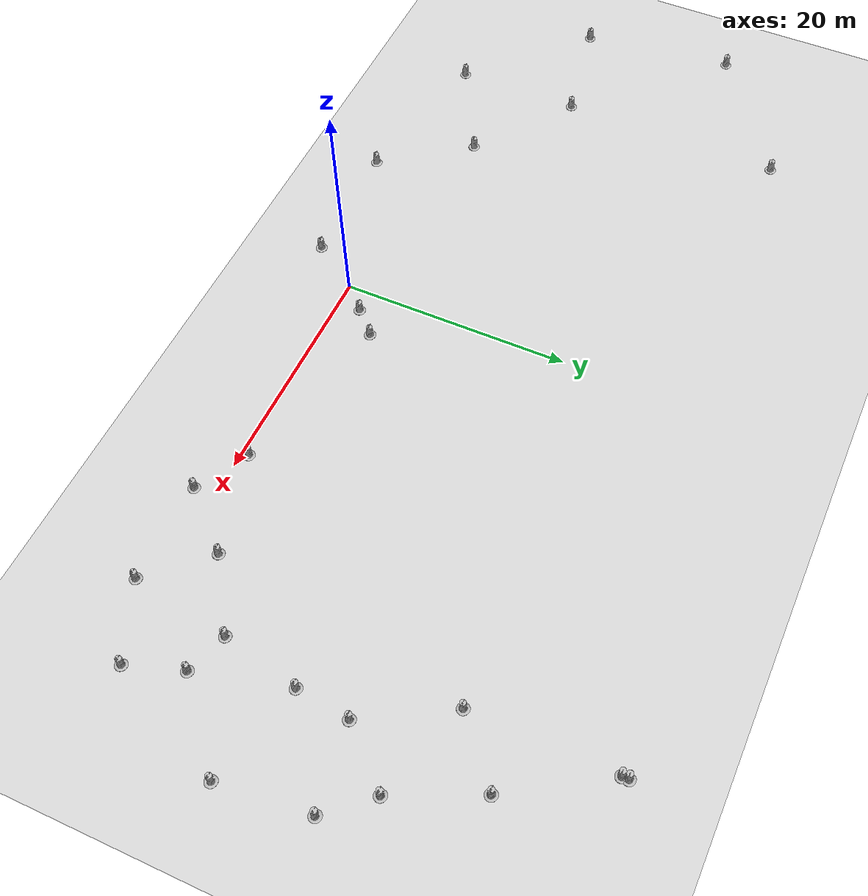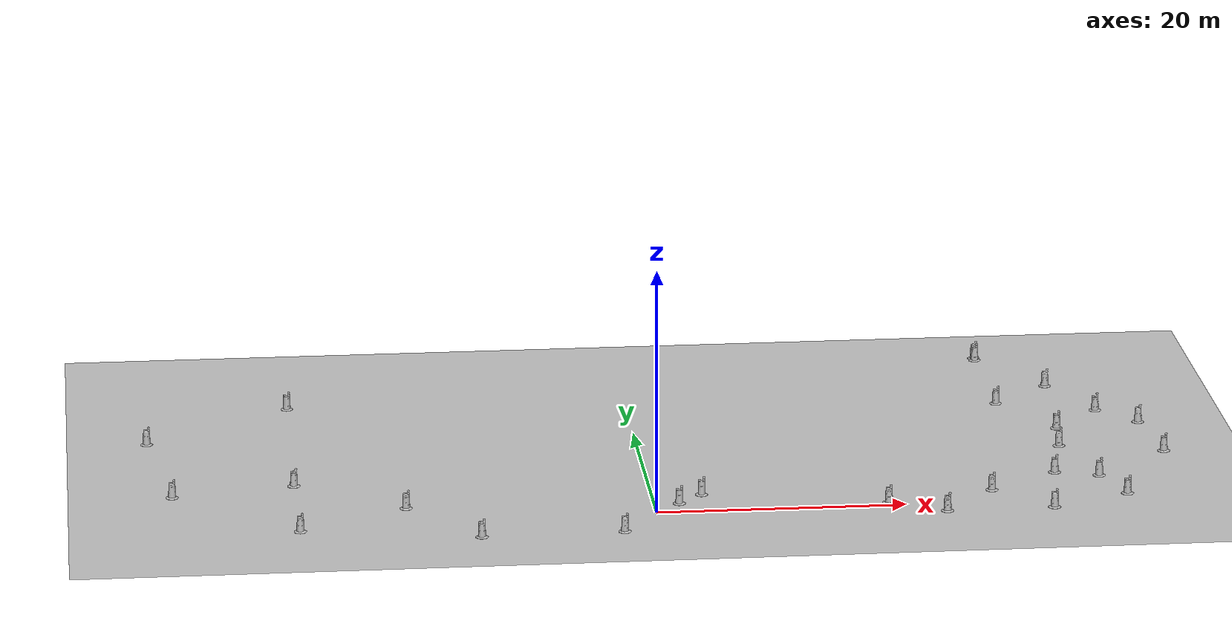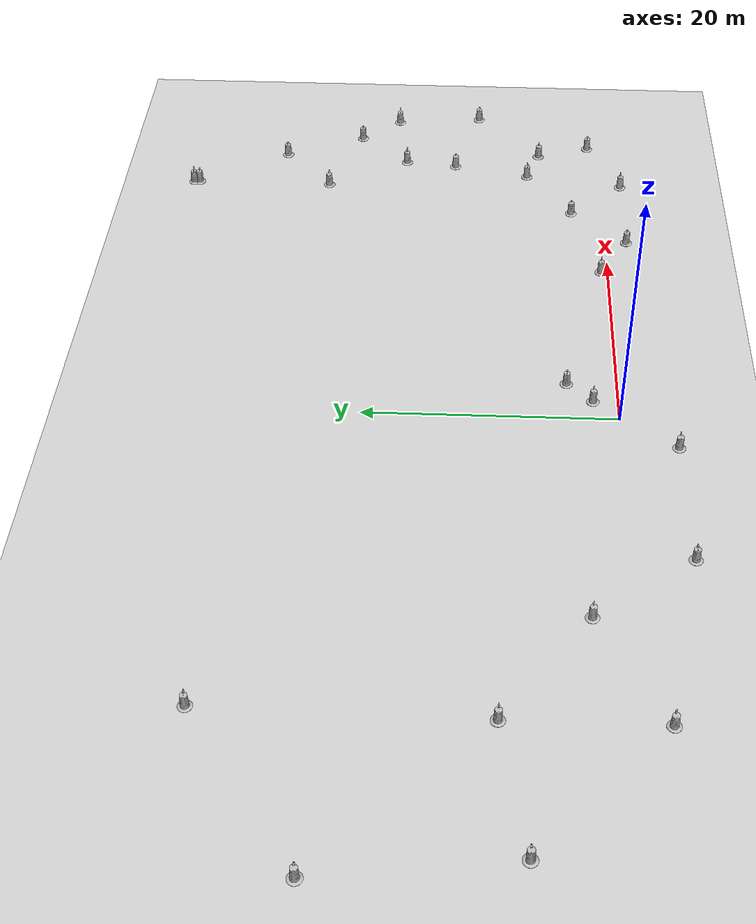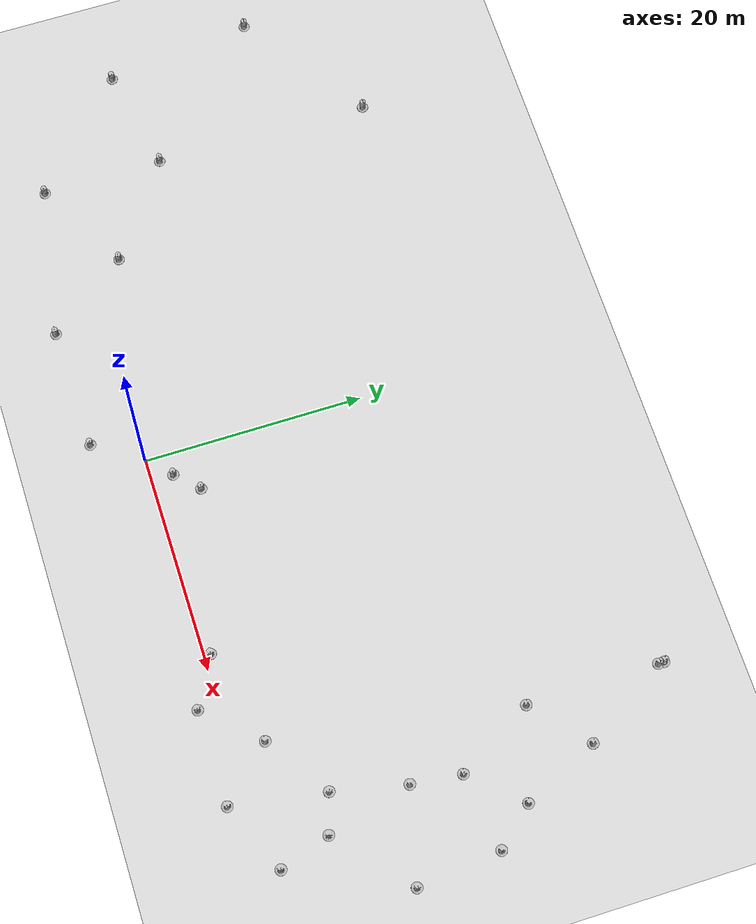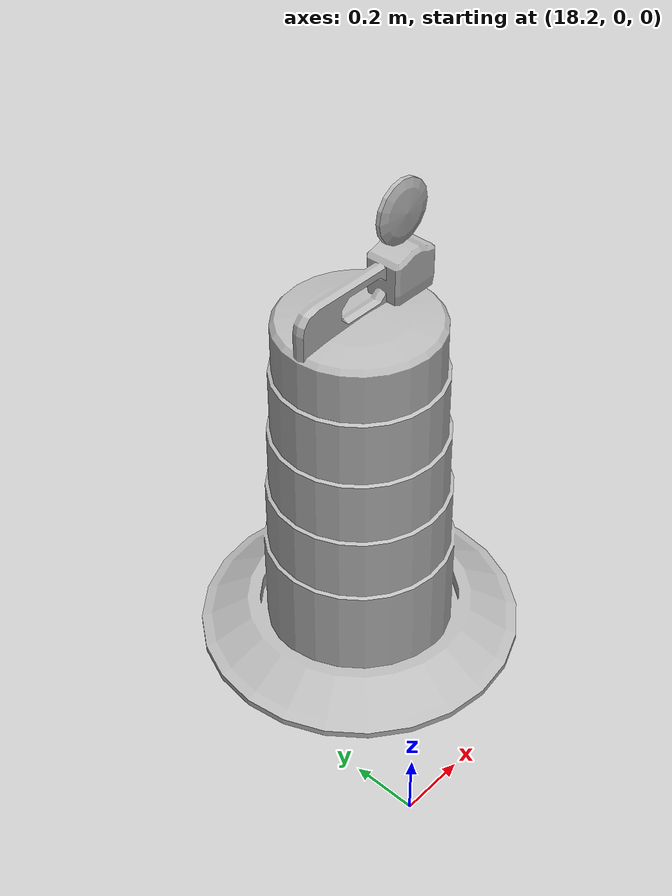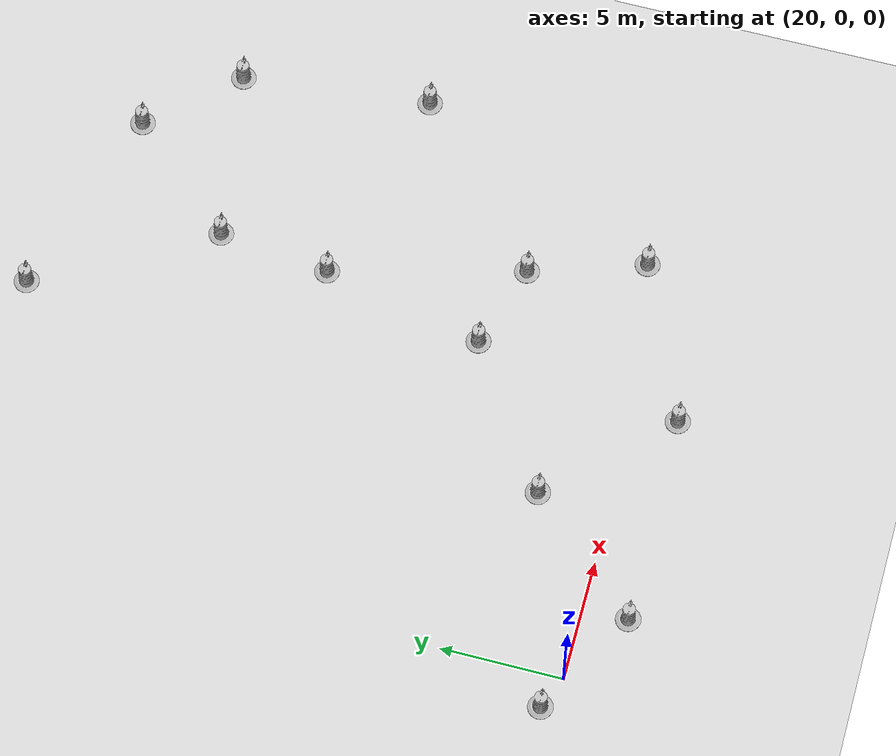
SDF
<?xml version="1.0" ?>
<sdf version="1.4">
  <world name="default">
    <scene>
      <sky>
        <clouds>
          <speed>12</speed>
        </clouds>
      </sky>
    <ambient>1.0 1.0 1.0 1.0</ambient>
    <shadows>true</shadows>
    </scene>

    <physics type="ode">
      <real_time_update_rate>100</real_time_update_rate>
      <max_step_size>0.001</max_step_size>
    </physics>
    <!-- A global light source -->
    <include>
      <uri>model:///urdf/models/sun</uri>
    </include>
    <!-- A ground plane -->
    <include>
      <uri>model:///urdf/models/grass_plane</uri>
    </include> -->
    <!-- barrels -->
    <include>
      <uri>model:///urdf/models/construction_barrel</uri>
      <name>construction_barrel_0</name> <!-- THE NAME MUST BE UNIQUE-->
      <pose>2 2 0 0 -0 0</pose>
    </include>
    <include>
      <uri>model:///urdf/models/construction_barrel</uri>
      <name>construction_barrel_1</name> <!-- THE NAME MUST BE UNIQUE-->
      <pose>4 4 0 0 -0 0</pose>
    </include>
    <include>
      <uri>model:///urdf/models/construction_barrel</uri>
      <name>construction_barrel_2</name> <!-- THE NAME MUST BE UNIQUE-->
      <pose>18.6657 0.614863 0 0 -0 0</pose>
    </include>
    <include>
      <uri>model:///urdf/models/construction_barrel</uri>
      <name>construction_barrel_3</name> <!-- THE NAME MUST BE UNIQUE-->
      <pose>23.0422 -1.81227 0 0 -0 0</pose>
    </include>
    <include>
      <uri>model:///urdf/models/construction_barrel</uri>
      <name>construction_barrel_4</name> <!-- THE NAME MUST BE UNIQUE-->
      <pose>27.3201 2.89872 0 0 -0 0</pose>
    </include>
    <include>
      <uri>model:///urdf/models/construction_barrel</uri>
      <name>construction_barrel_5</name> <!-- THE NAME MUST BE UNIQUE-->
      <pose>31.6636 -1.729 0 0 -0 0</pose>
    </include>
    <include>
      <uri>model:///urdf/models/construction_barrel</uri>
      <name>construction_barrel_6</name> <!-- THE NAME MUST BE UNIQUE-->
      <pose>38.0182 1.04564 0 0 -0 0</pose>
    </include>
    <include>
      <uri>model:///urdf/models/construction_barrel</uri>
      <name>construction_barrel_7</name> <!-- THE NAME MUST BE UNIQUE-->
      <pose>36.4965 5.66737 0 0 -0 0</pose>
    </include>
    <include>
      <uri>model:///urdf/models/construction_barrel</uri>
      <name>construction_barrel_8</name> <!-- THE NAME MUST BE UNIQUE-->
      <pose>33.0303 6.78622 0 0 -0 0</pose>
    </include>
    <include>
      <uri>model:///urdf/models/construction_barrel</uri>
      <name>construction_barrel_9</name> <!-- THE NAME MUST BE UNIQUE-->
      <pose>34.4685 13.4389 0 0 -0 0</pose>
    </include>
    <include>
      <uri>model:///urdf/models/construction_barrel</uri>
      <name>construction_barrel_10</name> <!-- THE NAME MUST BE UNIQUE-->
      <pose>42.799 11.3397 0 0 -0 0</pose>
    </include>
    <include>
      <uri>model:///urdf/models/construction_barrel</uri>
      <name>construction_barrel_11</name> <!-- THE NAME MUST BE UNIQUE-->
      <pose>42 19 0 0 -0 0</pose>
    </include>
    <include>
      <uri>model:///urdf/models/construction_barrel</uri>
      <name>construction_barrel_12</name> <!-- THE NAME MUST BE UNIQUE-->
      <pose>35 18 0 0 -0 0</pose>
    </include>
    <include>
      <uri>model:///urdf/models/construction_barrel</uri>
      <name>construction_barrel_13</name> <!-- THE NAME MUST BE UNIQUE-->
      <pose>35.8279 29.3106 0 0 -0 0</pose>
    </include>
    <include>
      <uri>model:///urdf/models/construction_barrel</uri>
      <name>construction_barrel_14</name> <!-- THE NAME MUST BE UNIQUE-->
      <pose>31 25 0 0 -0 0</pose>
    </include>
    <include>
      <uri>model:///urdf/models/construction_barrel</uri>
      <name>construction_barrel_15</name> <!-- THE NAME MUST BE UNIQUE-->
      <pose>38.9667 22.4208 0 0 -0 0</pose>
    </include>
    <include>
      <uri>model:///urdf/models/construction_barrel</uri>
      <name>construction_barrel_16</name> <!-- THE NAME MUST BE UNIQUE-->
      <pose>31 37 0 0 -0 0</pose>
    </include>
    <include>
      <uri>model:///urdf/models/construction_barrel</uri>
      <name>construction_barrel_17</name> <!-- THE NAME MUST BE UNIQUE-->
      <pose>-28.1764 29.2266 0 0 -0 0</pose>
    </include>
    <include>
      <uri>model:///urdf/models/construction_barrel</uri>
      <name>construction_barrel_18</name> <!-- THE NAME MUST BE UNIQUE-->
      <pose>30.9879 37.5247 0 0 -0 0</pose>
    </include>
    <include>
      <uri>model:///urdf/models/construction_barrel</uri>
      <name>construction_barrel_19</name> <!-- THE NAME MUST BE UNIQUE-->
      <pose>-40 21 0 0 -0 0</pose>
    </include>
    <include>
      <uri>model:///urdf/models/construction_barrel</uri>
      <name>construction_barrel_20</name> <!-- THE NAME MUST BE UNIQUE-->
      <pose>-28.4091 9.29088 0 0 -0 0</pose>
    </include>
    <include>
      <uri>model:///urdf/models/construction_barrel</uri>
      <name>construction_barrel_21</name> <!-- THE NAME MUST BE UNIQUE-->
      <pose>-38.2216 7.35362 0 0 -0 0</pose>
    </include>
    <include>
      <uri>model:///urdf/models/construction_barrel</uri>
      <name>construction_barrel_22</name> <!-- THE NAME MUST BE UNIQUE-->
      <pose>-28.3564 -1.82965 0 0 -0 0</pose>
    </include>
    <include>
      <uri>model:///urdf/models/construction_barrel</uri>
      <name>construction_barrel_23</name> <!-- THE NAME MUST BE UNIQUE-->
      <pose>-19.7443 2.95614 0 0 -0 0</pose>
    </include>
    <include>
      <uri>model:///urdf/models/construction_barrel</uri>
      <name>construction_barrel_24</name> <!-- THE NAME MUST BE UNIQUE-->
      <pose>-14.2283 -4.48718 0 0 -0 0</pose>
    </include>
    <include>
      <uri>model:///urdf/models/construction_barrel</uri>
      <name>construction_barrel_25</name> <!-- THE NAME MUST BE UNIQUE-->
      <pose>-2.93539 -4.28065 0 0 -0 0</pose>
    </include>
  </world>
</sdf>

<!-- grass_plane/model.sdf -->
<sdf version="1.5">
  <model name="grass_plane">
    <static>true</static>
    <link name="link">
      <collision name="collision">
        <geometry>
          <plane>
            <normal>0 0 1</normal>
            <size>100 100</size>
          </plane>
        </geometry>
        <surface>
          <friction>
            <ode>
              <mu>100</mu>
              <mu2>50</mu2>
            </ode>
          </friction>
        </surface>
      </collision>
      <visual name="visual">
        <cast_shadows>false</cast_shadows>
        <geometry>
          <plane>
            <normal>0 0 1</normal>
            <size>100 100</size>
          </plane>
        </geometry>
        <material>
          <script>
            <uri>model://urdf/qualification.material</uri>
            <!-- has tenitive potholes and lines -->
            <name>Gazebo/igvc_field</name>
          </script>
        </material>
      </visual>
    </link>
  </model>
</sdf>

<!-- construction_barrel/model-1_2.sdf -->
<sdf version="1.2">
  <model name='construction_barrel'>
    <link name='link'>
      <gravity>1</gravity>
      <inertial>
        <mass>500</mass>
        <inertia>
          <ixx>51.2096</ixx>
          <iyy>51.2096</iyy>
          <izz>25</izz>
          <ixy>0</ixy>
          <ixz>0</ixz>
          <iyz>0</iyz>
        </inertia>
      </inertial>
      <collision name='collision'>
        <geometry>
          <mesh>
            <uri>model://construction_barrel/meshes/construction_barrel.dae</uri>
            <scale>1 1 1</scale>
          </mesh>
        </geometry>
        <max_contacts>10</max_contacts>
        <surface>
          <contact>
            <ode/>
          </contact>
          <bounce/>
          <friction>
            <torsional>
              <ode/>
            </torsional>
            <ode/>
          </friction>
        </surface>
      </collision>
      <visual name='visual'>
        <geometry>
          <mesh>
            <uri>model://construction_barrel/meshes/construction_barrel.dae</uri>
            <scale>1 1 1</scale>
          </mesh>
        </geometry>
      </visual>
      <self_collide>0</self_collide>
      <kinematic>0</kinematic>
    </link>
  </model>
</sdf>
